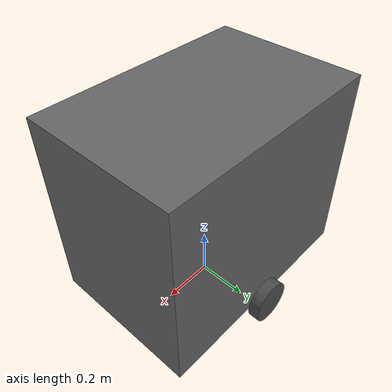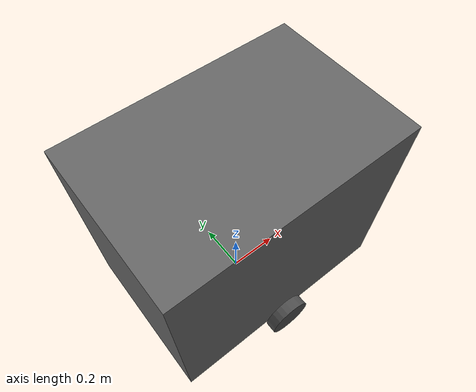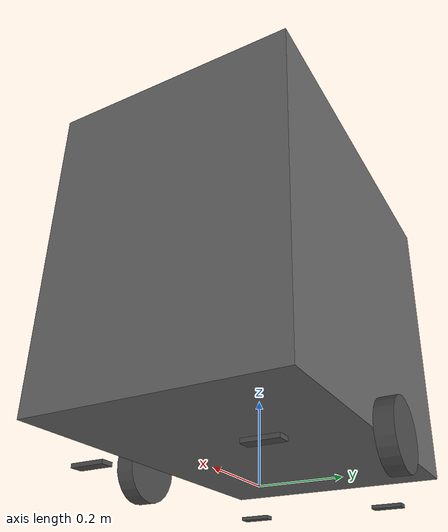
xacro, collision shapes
<?xml version="1.0"?>
<robot name="moving_base" xmlns:xacro="http://ros.org/wiki/xacro">

    <!-- 2D LIDARS CODE AT THE END -->

    <xacro:include filename="$(find ur_e_description)/urdf/properties.xacro" />
    <xacro:include filename="$(find ur_e_description)/urdf/moving_base.gazebo.xacro" />

    <xacro:property name="M_PI" value="3.1415926535897931" />

    <!-- testing adding a velodyne laser  -->
    <!-- VLP-16 -->
    <!-- velodyne -->
    <!-- velodyne -->

    <!-- testing adding a sensor camera -->

    <link name="world" />

    <joint name="world_joint" type="fixed">
      <parent link="world" />
      <child link="base_link_mb" />
      <origin xyz="0.0 0.0 0.0" rpy="0.0 0.0 0.0" />
    </joint>

    <link name="base_link_mb">
        <visual>
            <origin xyz="-0.43 -0.33 0.03" rpy="1.57 0 1.57" />
            <geometry>
                <mesh filename="package://ur_e_description/meshes/moving_base/moving_base.STL"
                    scale="0.001 0.001 0.001" />
            </geometry>
            <material name="light_black" />
        </visual>

        <collision>
            <origin xyz="0 0 0.459" rpy="0 0 0" />
            <geometry>
                <box size="0.900 0.600 0.770" />
            </geometry>
        </collision>

    </link>

    <!-- toogle this part to move the AGV in odom -->

    <!-- Colour -->

    <!-- Inertial link stores the robot's inertial information FROM HUSKY GROUNG ROBOT -->
    <link name="inertial_link">
        <inertial>
            <mass value="46.034" />
            <origin xyz="-0.00065 -0.085 0.062" />
            <inertia ixx="0.6022" ixy="-0.02364" ixz="-0.1197" iyy="1.7386" iyz="-0.001544"
                izz="2.0296" />
        </inertial>
    </link>

    <joint name="inertial_joint" type="fixed">
        <origin xyz="0 0 0" rpy="0 0 0" />
        <parent link="base_link_mb" />
        <child link="inertial_link" />
    </joint>

    <joint name="wheel_left_joint" type="continuous">
        <parent link="base_link_mb" />
        <child link="wheel_left_link" />
        <origin xyz="0.0 0.325 0.074" rpy="-1.57 0 0" />
        <axis xyz="0 0 1" />
    </joint>

    <link name="wheel_left_link">
        <visual>
            <origin xyz="0 0 -0.055" rpy="-1.57 0 0" />
            <geometry>
                <mesh filename="package://ur_e_description/meshes/wheels/left_tire.stl"
                    scale="0.0025 0.0025 0.0025" />
            </geometry>
            <material name="dark" />
        </visual>

        <collision>
            <origin xyz="0 0 0" rpy="0 0 0" />
            <geometry>
                <cylinder length="0.044" radius="0.084" />
            </geometry>
        </collision>

        <inertial>
            <origin xyz="0 0 0" />
            <mass value="2.8498940e-02" />
            <inertia ixx="1.1175580e-05" ixy="-4.2369783e-11" ixz="-5.9381719e-09"
                iyy="1.1192413e-05" iyz="-1.4400107e-11"
                izz="2.0712558e-05" />
        </inertial>
    </link>

    <joint name="wheel_right_joint" type="continuous">
        <parent link="base_link_mb" />
        <child link="wheel_right_link" />
        <origin xyz="0.0 -0.325 0.074" rpy="-1.57 0 0" />
        <axis xyz="0 0 1" />
    </joint>

    <link name="wheel_right_link">
        <visual>
            <origin xyz="0 0 0.055" rpy="1.57 0 0" />
            <geometry>
                <mesh filename="package://ur_e_description/meshes/wheels/left_tire.stl"
                    scale="0.0025 0.0025 0.0025" />
            </geometry>
            <material name="dark" />
        </visual>

        <collision>
            <origin xyz="0 0 0" rpy="0 0 0" />
            <geometry>
                <cylinder length="0.044" radius="0.084" />
            </geometry>
        </collision>

        <inertial>
            <origin xyz="0 0 0" />
            <mass value="2.8498940e-02" />
            <inertia ixx="1.1175580e-05" ixy="-4.2369783e-11" ixz="-5.9381719e-09"
                iyy="1.1192413e-05" iyz="-1.4400107e-11"
                izz="2.0712558e-05" />
        </inertial>
    </link>

    <!-- back caster -->
    <joint name="caster_back_right_joint" type="fixed">
        <parent link="base_link_mb" />
        <child link="caster_back_right_link" />
        <origin xyz="-0.345 -0.190 -0.004" rpy="-1.57 0 0" />
    </joint>

    <link name="caster_back_right_link">
        <visual>
            <origin xyz="0.027 -0.06 0" rpy="1.57 0 0" />
            <geometry>
                <mesh filename="package://ur_e_description/meshes/wheels/left_tire.stl"
                    scale="0.0020 0.0020 0.0020" />
            </geometry>
            <material name="dark" />
        </visual>

        <collision>
            <origin xyz="0 0.001 0" rpy="0 0 0" />
            <geometry>
                <box size="0.030 0.009 0.078" />
            </geometry>
        </collision>

        <inertial>
            <origin xyz="0 0 0" />
            <mass value="0.005" />
            <inertia ixx="0.001" ixy="0.0" ixz="0.0"
                iyy="0.001" iyz="0.0"
                izz="0.001" />
        </inertial>
    </link>

    <joint name="caster_back_left_joint" type="fixed">
        <parent link="base_link_mb" />
        <child link="caster_back_left_link" />
        <origin xyz="-0.345 0.190 -0.004" rpy="-1.57 0 0" />
    </joint>

    <link name="caster_back_left_link">
        <visual>
            <origin xyz="0.027 -0.06 0" rpy="-1.57 0 0" />
            <geometry>
                <mesh filename="package://ur_e_description/meshes/wheels/left_tire.stl"
                    scale="0.0020 0.0020 0.0020" />
            </geometry>
            <material name="dark" />
        </visual>

        <collision>
            <origin xyz="0 0.001 0" rpy="0 0 0" />
            <geometry>
                <box size="0.030 0.009 0.078" />
            </geometry>
        </collision>

        <inertial>
            <origin xyz="0 0 0" />
            <mass value="0.005" />
            <inertia ixx="0.001" ixy="0.0" ixz="0.0"
                iyy="0.001" iyz="0.0"
                izz="0.001" />
        </inertial>
    </link>
    <!-- back caster -->

    <!-- front caster -->
    <joint name="caster_front_right_joint" type="fixed">
        <parent link="base_link_mb" />
        <child link="caster_front_right_link" />
        <origin xyz="0.345 -0.190 -0.004" rpy="-1.57 0 0" />
    </joint>

    <link name="caster_front_right_link">
        <visual>
            <origin xyz="0 -0.06 0" rpy="1.57 0 0" />
            <geometry>
                <mesh filename="package://ur_e_description/meshes/wheels/left_tire.stl"
                    scale="0.0020 0.0020 0.0020" />
            </geometry>
            <material name="dark" />
        </visual>

        <collision>
            <origin xyz="0 0.001 0" rpy="0 0 0" />
            <geometry>
                <box size="0.030 0.009 0.078" />
            </geometry>
        </collision>

        <inertial>
            <origin xyz="0 0 0" />
            <mass value="0.005" />
            <inertia ixx="0.001" ixy="0.0" ixz="0.0"
                iyy="0.001" iyz="0.0"
                izz="0.001" />
        </inertial>
    </link>

    <joint name="caster_front_left_joint" type="fixed">
        <parent link="base_link_mb" />
        <child link="caster_front_left_link" />
        <origin xyz="0.345 0.190 -0.004" rpy="-1.57 0 0" />
    </joint>

    <link name="caster_front_left_link">
        <visual>
            <origin xyz="0 -0.06 0" rpy="-1.57 0 0" />
            <geometry>
                <mesh filename="package://ur_e_description/meshes/wheels/left_tire.stl"
                    scale="0.0020 0.0020 0.0020" />
            </geometry>
            <material name="dark" />
        </visual>

        <collision>
            <origin xyz="0 0.001 0" rpy="0 0 0" />
            <geometry>
                <box size="0.030 0.009 0.078" />
            </geometry>
        </collision>

        <inertial>
            <origin xyz="0 0 0" />
            <mass value="0.005" />
            <inertia ixx="0.001" ixy="0.0" ixz="0.0"
                iyy="0.001" iyz="0.0"
                izz="0.001" />
        </inertial>
    </link>
    <!-- front caster -->

    <joint name="imu_joint" type="fixed">
        <parent link="base_link_mb" />
        <child link="imu_link" />
        <origin xyz="0.0 0 0.068" rpy="0 0 0" />
    </joint>

    <link name="imu_link" />

    <!-- ROMEVED FOR NOW - JORGE FEB 2023 -->
    <!-- lidar sensor front -->
    <!-- lidar sensor front -->

    <!-- lidar sensor back -->
    <!-- lidar sensor back -->
    <!-- ROMEVED FOR NOW - JORGE FEB 2023 -->

</robot>

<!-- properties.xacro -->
<robot name="properties" xmlns:xacro="http://ros.org/wiki/xacro">

    <material name="grey">
        <color rgba="0.7 0.7 0.7 1.0" />
    </material>

    <material name="dark">
        <color rgba="0.3 0.3 0.3 1.0" />
    </material>

    <material name="light_black">
        <color rgba="0.4 0.4 0.4 1.0" />
    </material>

</robot>
